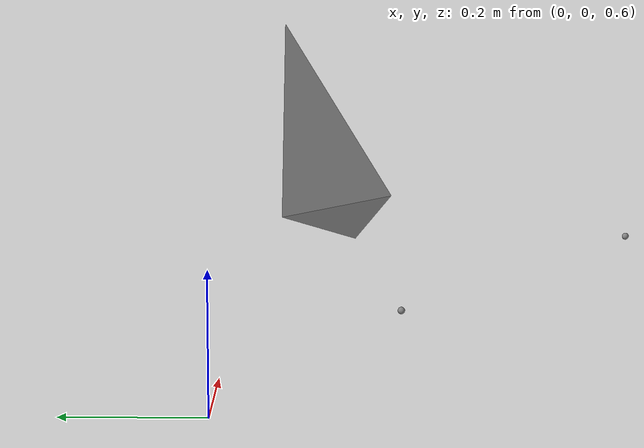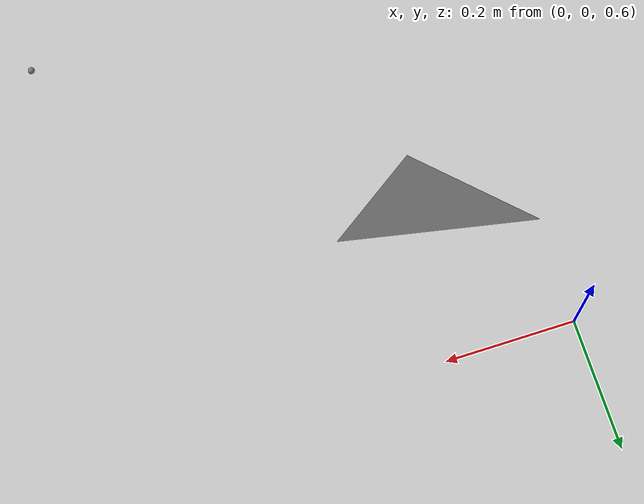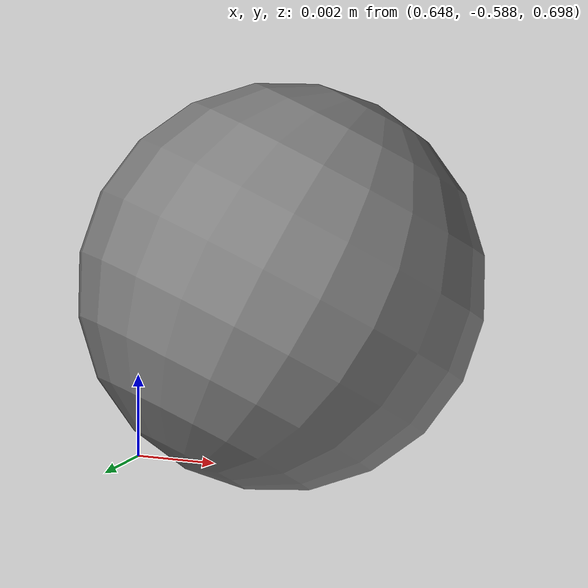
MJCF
<mujoco model="rotated_arm">
  <compiler angle="radian"/>
  <asset>
    <mesh name="bone" vertex="0 0 0  0.1 0 0  0 0.2 0  0 0 0.3"/>
  </asset>
  <worldbody>
    <body name="upper" pos="0.2 -0.3 0.8" quat="0.9238795325 0 0 0.3826834324">
      <inertial pos="0.01 0.02 0.03" quat="0.9238795325 0 0 0.3826834324" mass="1" diaginertia="0.02 0.03 0.04"/>
      <joint name="shoulder" axis="0 0 1" range="-1.2 1.4"/>
      <geom name="bone" type="mesh" mesh="bone" pos="0.04 0.05 0.06" quat="0.9238795325 0 0.3826834324 0"/>
      <site name="origin" pos="0.03 0.04 -0.1"/>
      <body name="forearm" pos="0.1 -0.3 0.02" quat="0.9659258263 0.2588190451 0 0">
        <inertial pos="0 -0.1 0" mass="0.5" diaginertia="0.01 0.02 0.025"/>
        <joint name="elbow" pos="0.01 -0.02 0.03" axis="1 0 0" range="-0.2 2.1" damping="0.5"/>
        <site name="insertion" pos="0.02 -0.25 0.01"/>
      </body>
    </body>
  </worldbody>
</mujoco>
